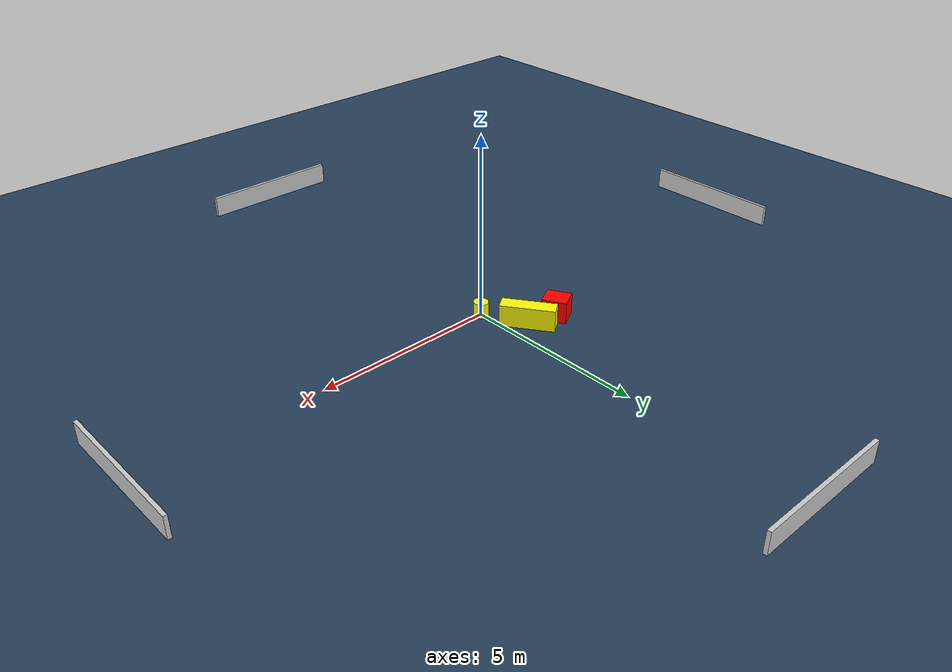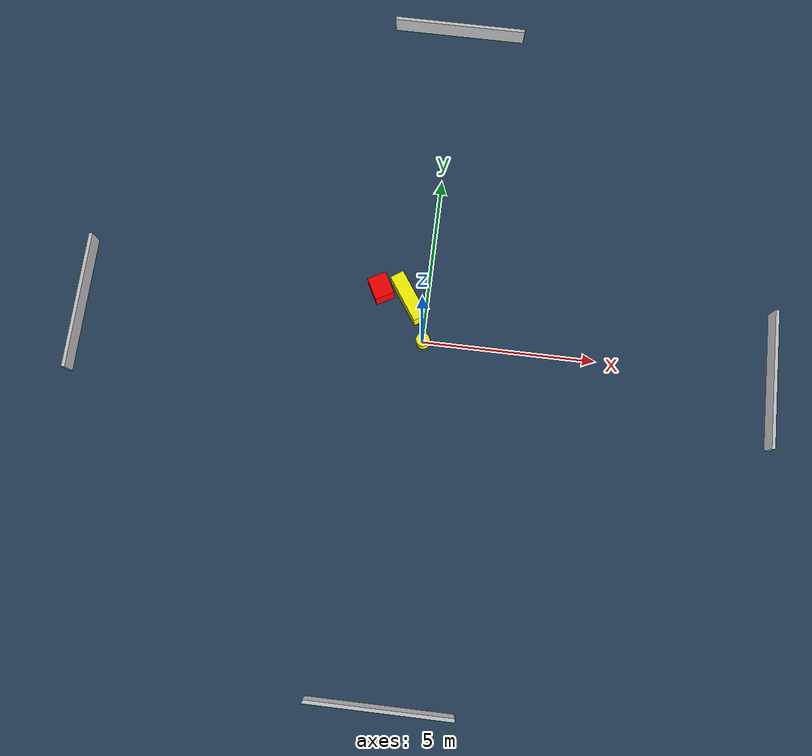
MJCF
<?xml version="1.0" ?>
<mujoco model="generated_environment">
  <option timestep="0.01" integrator="RK4" cone="elliptic"/>
  <default>
    <geom density="1"/>
  </default>
  <asset>
    <texture builtin="gradient" height="3072" name="skybox" rgb1="0.3 0.5 0.7" rgb2="0 0 0" type="skybox" width="512"/>
    <texture builtin="checker" height="300" name="groundplane" rgb1="0.2 0.3 0.4" rgb2="0.1 0.2 0.3" type="2d" width="300"/>
    <material name="groundplane" reflectance="0.2" texrepeat="5 5" texture="groundplane"/>
  </asset>
  <worldbody>
    <light dir="0 0 -1" directional="true" pos="0 0 1.5"/>
    <geom condim="3" friction="0.5 0.005 0.001" material="groundplane" name="floor" pos="0 0 0" size="0 0 0.05" type="plane"/>
    <body name="walls">
      <geom name="wall_1" condim="4" pos="-10.0 0.0 0.3" rgba="0.800000011920929 0.800000011920929 0.800000011920929 1.0" size="0.05 2.0 0.3" type="box"/>
      <geom name="wall_2" condim="4" pos="10.0 0.0 0.3" rgba="0.800000011920929 0.800000011920929 0.800000011920929 1.0" size="0.05 2.0 0.3" type="box"/>
      <geom name="wall_3" condim="4" pos="0.0 -10.0 0.3" rgba="0.800000011920929 0.800000011920929 0.800000011920929 1.0" size="2.0 0.05 0.3" type="box"/>
      <geom name="wall_4" condim="4" pos="0.0 10.0 0.3" rgba="0.800000011920929 0.800000011920929 0.800000011920929 1.0" size="2.0 0.05 0.3" type="box"/>
    </body>
    <body name="robot">
      <joint name="joint_x" type="slide" pos="0 0 0" axis="1 0 0"/>
      <joint name="joint_y" type="slide" pos="0 0 0" axis="0 1 0"/>
      <geom name="robot" type="cylinder" pos="0.0 0.0 0.2" size="0.2 0.2 0.0" mass="5.0" friction="1.0 0.005 0.0001" condim="4" rgba="1.0 1.0 0.0 1.0"/>
    </body>
    <body name="obstacle_1_movable">
      <geom name="obstacle_1_movable" condim="4" pos="-0.5510975056149245 1.1930238613215207 0.3" euler="0 0 304.45847566780014" friction="0.0 0.005 0.001" rgba="1.0 1.0 0.0 1.0" size="0.7299286607552096 0.20841659940501256 0.3" type="box" mass="0.1"/>
      <joint type="free"/>
    </body>
    <body name="obstacle_2_static">
      <geom name="obstacle_2_static" condim="4" pos="-1.3858891448846855 1.398181616261311 0.3" euler="0 0 208.12054530727346" friction="0.0 0.005 0.001" rgba="1.0 0.0 0.0 1.0" size="0.2851106436731042 0.3321476238514134 0.3" type="box"/>
    </body>
  </worldbody>
  <actuator>
    <motor name="actuator_x" joint="joint_x" gear="1" ctrlrange="-1 1"/>
    <motor name="actuator_y" joint="joint_y" gear="1" ctrlrange="-1 1"/>
  </actuator>
</mujoco>
